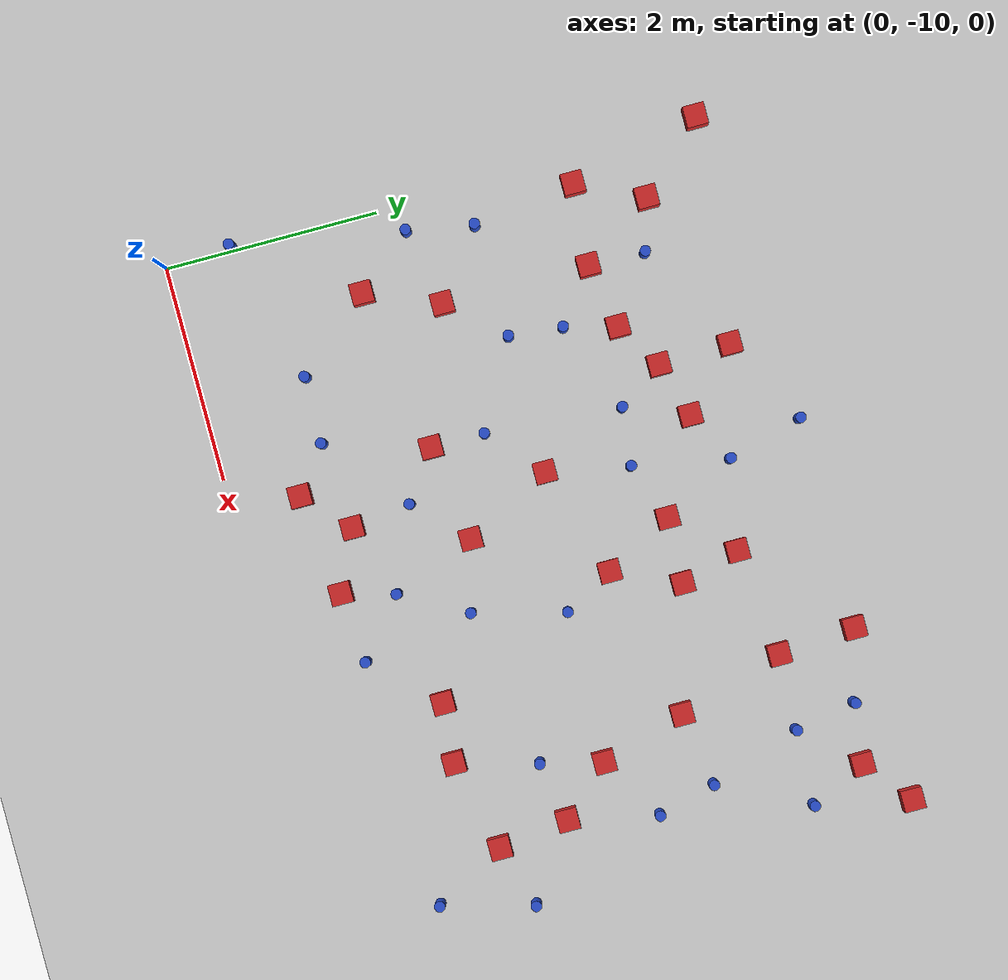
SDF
<sdf version="1.6">
 <world name="default">
  <model name="ground_plane">
   <static>1</static>
   <link name="link">
    <collision name="collision">
     <geometry><plane><normal>0 0 1</normal><size>100 100</size></plane></geometry>
     <surface><friction><ode><mu>100</mu><mu2>50</mu2></ode></friction></surface>
    </collision>
    <visual name="visual">
     <cast_shadows>0</cast_shadows>
     <geometry><plane><normal>0 0 1</normal><size>100 100</size></plane></geometry>
     <material>
      <ambient>1.0 1.0 1.0 1.0</ambient>
      <diffuse>0.8 0.8 0.8 1.0</diffuse>
      <specular>0.01 0.01 0.01 1.000000</specular>
     </material>
    </visual>
   </link>
  </model>
  <model name="pole_obstacle0">
   <static>true</static>
   <pose>6.26737419633 -9.08554294742 -3.09024884793e-07 -7.19054271912e-07 -2.1131507513e-07 -1.93935509261e-07</pose>
   <link name="link">
    <pose>0 0 0.3 0 -0 0</pose>
    <inertial>
     <mass>1</mass>
     <inertia><ixx>0.145833</ixx><ixy>0</ixy><ixz>0</ixz><iyy>0.145833</iyy><iyz>0</iyz><izz>0.125</izz></inertia>
    </inertial>
    <collision name="collision">
     <geometry><cylinder><radius>0.05</radius><length>.6</length></cylinder></geometry>
    </collision>
    <visual name="visual">
     <geometry><cylinder><radius>0.05</radius><length>.6</length></cylinder></geometry>
     <material>
      <script><name>Gazebo/Blue</name><uri>file://media/materials/scripts/gazebo.material</uri></script>
     </material>
    </visual>
   </link>
  </model>
  <model name="square_post_obstacle1">
   <static>true</static>
   <pose>0.52450580127 -5.58498487305 -4.36207812815e-07 3.75137919937e-06 9.77721102514e-07 2.47381364184e-05</pose>
   <link name="link">
    <pose>0 0 0.25 0 -0 0</pose>
    <inertial>
     <mass>100</mass>
     <inertia>
      <ixx>0.166667</ixx>
      <ixy>0</ixy>
      <ixz>0</ixz>
      <iyy>0.166667</iyy>
      <iyz>0</iyz>
      <izz>0.166667</izz>
     </inertia>
    </inertial>
    <collision name="collision"><geometry><box><size>.2 .2 .5</size></box></geometry></collision>
    <visual name="visual">
     <geometry><box><size>.2 .2 .5</size></box></geometry>
     <material>
      <script><name>Gazebo/Red</name><uri>file://media/materials/scripts/gazebo.material</uri></script>
     </material>
    </visual>
   </link>
  </model>
  <model name="square_post_obstacle4">
   <static>true</static>
   <pose>2.7346866321 -8.96292127128 -4.36207812815e-07 3.75137919937e-06 9.77721102514e-07 2.47381364184e-05</pose>
   <link name="link">
    <pose>0 0 0.25 0 -0 0</pose>
    <inertial>
     <mass>100</mass>
     <inertia>
      <ixx>0.166667</ixx>
      <ixy>0</ixy>
      <ixz>0</ixz>
      <iyy>0.166667</iyy>
      <iyz>0</iyz>
      <izz>0.166667</izz>
     </inertia>
    </inertial>
    <collision name="collision"><geometry><box><size>.2 .2 .5</size></box></geometry></collision>
    <visual name="visual">
     <geometry><box><size>.2 .2 .5</size></box></geometry>
     <material>
      <script><name>Gazebo/Red</name><uri>file://media/materials/scripts/gazebo.material</uri></script>
     </material>
    </visual>
   </link>
  </model>
  <model name="pole_obstacle8">
   <static>true</static>
   <pose>2.31660148392 -6.29924024177 -3.09024884793e-07 -7.19054271912e-07 -2.11315075134e-07 -1.93935509266e-07</pose>
   <link name="link">
    <pose>0 0 0.3 0 -0 0</pose>
    <inertial>
     <mass>1</mass>
     <inertia><ixx>0.145833</ixx><ixy>0</ixy><ixz>0</ixz><iyy>0.145833</iyy><iyz>0</iyz><izz>0.125</izz></inertia>
    </inertial>
    <collision name="collision">
     <geometry><cylinder><radius>0.05</radius><length>.6</length></cylinder></geometry>
    </collision>
    <visual name="visual">
     <geometry><cylinder><radius>0.05</radius><length>.6</length></cylinder></geometry>
     <material>
      <script><name>Gazebo/Blue</name><uri>file://media/materials/scripts/gazebo.material</uri></script>
     </material>
    </visual>
   </link>
  </model>
  <model name="pole_obstacle14">
   <static>true</static>
   <pose>5.25515491636 -7.87081092041 -3.09024884793e-07 -7.19054271911e-07 -2.1131507516e-07 -1.93935509277e-07</pose>
   <link name="link">
    <pose>0 0 0.3 0 -0 0</pose>
    <inertial>
     <mass>1</mass>
     <inertia><ixx>0.145833</ixx><ixy>0</ixy><ixz>0</ixz><iyy>0.145833</iyy><iyz>0</iyz><izz>0.125</izz></inertia>
    </inertial>
    <collision name="collision">
     <geometry><cylinder><radius>0.05</radius><length>.6</length></cylinder></geometry>
    </collision>
    <visual name="visual">
     <geometry><cylinder><radius>0.05</radius><length>.6</length></cylinder></geometry>
     <material>
      <script><name>Gazebo/Blue</name><uri>file://media/materials/scripts/gazebo.material</uri></script>
     </material>
    </visual>
   </link>
  </model>
  <model name="square_post_obstacle12">
   <static>true</static>
   <pose>5.81750560455 -7.76058420391 -4.36207812815e-07 3.75137919937e-06 9.77721102514e-07 2.47381364184e-05</pose>
   <link name="link">
    <pose>0 0 0.25 0 -0 0</pose>
    <inertial>
     <mass>100</mass>
     <inertia>
      <ixx>0.166667</ixx>
      <ixy>0</ixy>
      <ixz>0</ixz>
      <iyy>0.166667</iyy>
      <iyz>0</iyz>
      <izz>0.166667</izz>
     </inertia>
    </inertial>
    <collision name="collision"><geometry><box><size>.2 .2 .5</size></box></geometry></collision>
    <visual name="visual">
     <geometry><box><size>.2 .2 .5</size></box></geometry>
     <material>
      <script><name>Gazebo/Red</name><uri>file://media/materials/scripts/gazebo.material</uri></script>
     </material>
    </visual>
   </link>
  </model>
  <model name="pole_obstacle17">
   <static>true</static>
   <pose>1.41958316251 -7.1327692969 -3.09024884793e-07 -7.19054271912e-07 -2.11315075134e-07 -1.93935509265e-07</pose>
   <link name="link">
    <pose>0 0 0.3 0 -0 0</pose>
    <inertial>
     <mass>1</mass>
     <inertia><ixx>0.145833</ixx><ixy>0</ixy><ixz>0</ixz><iyy>0.145833</iyy><iyz>0</iyz><izz>0.125</izz></inertia>
    </inertial>
    <collision name="collision">
     <geometry><cylinder><radius>0.05</radius><length>.6</length></cylinder></geometry>
    </collision>
    <visual name="visual">
     <geometry><cylinder><radius>0.05</radius><length>.6</length></cylinder></geometry>
     <material>
      <script><name>Gazebo/Blue</name><uri>file://media/materials/scripts/gazebo.material</uri></script>
     </material>
    </visual>
   </link>
  </model>
  <model name="pole_obstacle22">
   <static>true</static>
   <pose>5.99709759781 -6.93497436783 -3.09024884793e-07 -7.19054271911e-07 -2.1131507516e-07 -1.93935509277e-07</pose>
   <link name="link">
    <pose>0 0 0.3 0 -0 0</pose>
    <inertial>
     <mass>1</mass>
     <inertia><ixx>0.145833</ixx><ixy>0</ixy><ixz>0</ixz><iyy>0.145833</iyy><iyz>0</iyz><izz>0.125</izz></inertia>
    </inertial>
    <collision name="collision">
     <geometry><cylinder><radius>0.05</radius><length>.6</length></cylinder></geometry>
    </collision>
    <visual name="visual">
     <geometry><cylinder><radius>0.05</radius><length>.6</length></cylinder></geometry>
     <material>
      <script><name>Gazebo/Blue</name><uri>file://media/materials/scripts/gazebo.material</uri></script>
     </material>
    </visual>
   </link>
  </model>
  <model name="square_post_obstacle21">
   <static>true</static>
   <pose>3.11512089551 -7.94519400333 -4.36207812815e-07 3.75137919937e-06 9.77721102514e-07 2.47381364184e-05</pose>
   <link name="link">
    <pose>0 0 0.25 0 -0 0</pose>
    <inertial>
     <mass>100</mass>
     <inertia>
      <ixx>0.166667</ixx>
      <ixy>0</ixy>
      <ixz>0</ixz>
      <iyy>0.166667</iyy>
      <iyz>0</iyz>
      <izz>0.166667</izz>
     </inertia>
    </inertial>
    <collision name="collision"><geometry><box><size>.2 .2 .5</size></box></geometry></collision>
    <visual name="visual">
     <geometry><box><size>.2 .2 .5</size></box></geometry>
     <material>
      <script><name>Gazebo/Red</name><uri>file://media/materials/scripts/gazebo.material</uri></script>
     </material>
    </visual>
   </link>
  </model>
  <model name="square_post_obstacle26">
   <static>true</static>
   <pose>0.228843179192 -6.20012209745 -4.36207812815e-07 3.75137919937e-06 9.77721102514e-07 2.47381364184e-05</pose>
   <link name="link">
    <pose>0 0 0.25 0 -0 0</pose>
    <inertial>
     <mass>100</mass>
     <inertia>
      <ixx>0.166667</ixx>
      <ixy>0</ixy>
      <ixz>0</ixz>
      <iyy>0.166667</iyy>
      <iyz>0</iyz>
      <izz>0.166667</izz>
     </inertia>
    </inertial>
    <collision name="collision"><geometry><box><size>.2 .2 .5</size></box></geometry></collision>
    <visual name="visual">
     <geometry><box><size>.2 .2 .5</size></box></geometry>
     <material>
      <script><name>Gazebo/Red</name><uri>file://media/materials/scripts/gazebo.material</uri></script>
     </material>
    </visual>
   </link>
  </model>
  <model name="pole_obstacle33">
   <static>true</static>
   <pose>5.46988691667 -4.95631190031 -3.09024884793e-07 -7.19054271911e-07 -2.1131507516e-07 -1.93935509277e-07</pose>
   <link name="link">
    <pose>0 0 0.3 0 -0 0</pose>
    <inertial>
     <mass>1</mass>
     <inertia><ixx>0.145833</ixx><ixy>0</ixy><ixz>0</ixz><iyy>0.145833</iyy><iyz>0</iyz><izz>0.125</izz></inertia>
    </inertial>
    <collision name="collision">
     <geometry><cylinder><radius>0.05</radius><length>.6</length></cylinder></geometry>
    </collision>
    <visual name="visual">
     <geometry><cylinder><radius>0.05</radius><length>.6</length></cylinder></geometry>
     <material>
      <script><name>Gazebo/Blue</name><uri>file://media/materials/scripts/gazebo.material</uri></script>
     </material>
    </visual>
   </link>
  </model>
  <model name="pole_obstacle38">
   <static>true</static>
   <pose>2.8336300995 -4.75992123661 -3.09024884793e-07 -7.19054271912e-07 -2.11315075134e-07 -1.93935509266e-07</pose>
   <link name="link">
    <pose>0 0 0.3 0 -0 0</pose>
    <inertial>
     <mass>1</mass>
     <inertia><ixx>0.145833</ixx><ixy>0</ixy><ixz>0</ixz><iyy>0.145833</iyy><iyz>0</iyz><izz>0.125</izz></inertia>
    </inertial>
    <collision name="collision">
     <geometry><cylinder><radius>0.05</radius><length>.6</length></cylinder></geometry>
    </collision>
    <visual name="visual">
     <geometry><cylinder><radius>0.05</radius><length>.6</length></cylinder></geometry>
     <material>
      <script><name>Gazebo/Blue</name><uri>file://media/materials/scripts/gazebo.material</uri></script>
     </material>
    </visual>
   </link>
  </model>
  <model name="pole_obstacle41">
   <static>true</static>
   <pose>3.42475999031 -8.72795376619 -3.09024884848e-07 -7.19054271902e-07 -2.11315075199e-07 -1.93935509286e-07</pose>
   <link name="link">
    <pose>0 0 0.3 0 -0 0</pose>
    <inertial>
     <mass>1</mass>
     <inertia><ixx>0.145833</ixx><ixy>0</ixy><ixz>0</ixz><iyy>0.145833</iyy><iyz>0</iyz><izz>0.125</izz></inertia>
    </inertial>
    <collision name="collision">
     <geometry><cylinder><radius>0.05</radius><length>.6</length></cylinder></geometry>
    </collision>
    <visual name="visual">
     <geometry><cylinder><radius>0.05</radius><length>.6</length></cylinder></geometry>
     <material>
      <script><name>Gazebo/Blue</name><uri>file://media/materials/scripts/gazebo.material</uri></script>
     </material>
    </visual>
   </link>
  </model>
  <model name="pole_obstacle51">
   <static>true</static>
   <pose>3.9506112311 -9.16215911548 -3.09024884848e-07 -7.19054271902e-07 -2.11315075199e-07 -1.93935509286e-07</pose>
   <link name="link">
    <pose>0 0 0.3 0 -0 0</pose>
    <inertial>
     <mass>1</mass>
     <inertia><ixx>0.145833</ixx><ixy>0</ixy><ixz>0</ixz><iyy>0.145833</iyy><iyz>0</iyz><izz>0.125</izz></inertia>
    </inertial>
    <collision name="collision">
     <geometry><cylinder><radius>0.05</radius><length>.6</length></cylinder></geometry>
    </collision>
    <visual name="visual">
     <geometry><cylinder><radius>0.05</radius><length>.6</length></cylinder></geometry>
     <material>
      <script><name>Gazebo/Blue</name><uri>file://media/materials/scripts/gazebo.material</uri></script>
     </material>
    </visual>
   </link>
  </model>
  <model name="pole_obstacle52">
   <static>true</static>
   <pose>2.8545146541 -6.36024013476 -3.09024884793e-07 -7.19054271912e-07 -2.11315075134e-07 -1.93935509266e-07</pose>
   <link name="link">
    <pose>0 0 0.3 0 -0 0</pose>
    <inertial>
     <mass>1</mass>
     <inertia><ixx>0.145833</ixx><ixy>0</ixy><ixz>0</ixz><iyy>0.145833</iyy><iyz>0</iyz><izz>0.125</izz></inertia>
    </inertial>
    <collision name="collision">
     <geometry><cylinder><radius>0.05</radius><length>.6</length></cylinder></geometry>
    </collision>
    <visual name="visual">
     <geometry><cylinder><radius>0.05</radius><length>.6</length></cylinder></geometry>
     <material>
      <script><name>Gazebo/Blue</name><uri>file://media/materials/scripts/gazebo.material</uri></script>
     </material>
    </visual>
   </link>
  </model>
  <model name="square_post_obstacle56">
   <static>true</static>
   <pose>5.15959012248 -6.50011600207 -4.36207812815e-07 3.75137919937e-06 9.77721102514e-07 2.47381364184e-05</pose>
   <link name="link">
    <pose>0 0 0.25 0 -0 0</pose>
    <inertial>
     <mass>100</mass>
     <inertia>
      <ixx>0.166667</ixx>
      <ixy>0</ixy>
      <ixz>0</ixz>
      <iyy>0.166667</iyy>
      <iyz>0</iyz>
      <izz>0.166667</izz>
     </inertia>
    </inertial>
    <collision name="collision"><geometry><box><size>.2 .2 .5</size></box></geometry></collision>
    <visual name="visual">
     <geometry><box><size>.2 .2 .5</size></box></geometry>
     <material>
      <script><name>Gazebo/Red</name><uri>file://media/materials/scripts/gazebo.material</uri></script>
     </material>
    </visual>
   </link>
  </model>
  <model name="square_post_obstacle59">
   <static>true</static>
   <pose>2.01064074963 -5.19921940768 -4.36207812815e-07 3.75137919937e-06 9.77721102514e-07 2.47381364184e-05</pose>
   <link name="link">
    <pose>0 0 0.25 0 -0 0</pose>
    <inertial>
     <mass>100</mass>
     <inertia>
      <ixx>0.166667</ixx>
      <ixy>0</ixy>
      <ixz>0</ixz>
      <iyy>0.166667</iyy>
      <iyz>0</iyz>
      <izz>0.166667</izz>
     </inertia>
    </inertial>
    <collision name="collision"><geometry><box><size>.2 .2 .5</size></box></geometry></collision>
    <visual name="visual">
     <geometry><box><size>.2 .2 .5</size></box></geometry>
     <material>
      <script><name>Gazebo/Red</name><uri>file://media/materials/scripts/gazebo.material</uri></script>
     </material>
    </visual>
   </link>
  </model>
  <model name="square_post_obstacle61">
   <static>true</static>
   <pose>0.693375816904 -8.3198788 -4.36207812815e-07 3.75137919937e-06 9.77721102514e-07 2.47381364184e-05</pose>
   <link name="link">
    <pose>0 0 0.25 0 -0 0</pose>
    <inertial>
     <mass>100</mass>
     <inertia>
      <ixx>0.166667</ixx>
      <ixy>0</ixy>
      <ixz>0</ixz>
      <iyy>0.166667</iyy>
      <iyz>0</iyz>
      <izz>0.166667</izz>
     </inertia>
    </inertial>
    <collision name="collision"><geometry><box><size>.2 .2 .5</size></box></geometry></collision>
    <visual name="visual">
     <geometry><box><size>.2 .2 .5</size></box></geometry>
     <material>
      <script><name>Gazebo/Red</name><uri>file://media/materials/scripts/gazebo.material</uri></script>
     </material>
    </visual>
   </link>
  </model>
  <model name="square_post_obstacle65">
   <static>true</static>
   <pose>4.8090287527 -4.78140709939 -4.36207812815e-07 3.75137919937e-06 9.77721102514e-07 2.47381364184e-05</pose>
   <link name="link">
    <pose>0 0 0.25 0 -0 0</pose>
    <inertial>
     <mass>100</mass>
     <inertia>
      <ixx>0.166667</ixx>
      <ixy>0</ixy>
      <ixz>0</ixz>
      <iyy>0.166667</iyy>
      <iyz>0</iyz>
      <izz>0.166667</izz>
     </inertia>
    </inertial>
    <collision name="collision"><geometry><box><size>.2 .2 .5</size></box></geometry></collision>
    <visual name="visual">
     <geometry><box><size>.2 .2 .5</size></box></geometry>
     <material>
      <script><name>Gazebo/Red</name><uri>file://media/materials/scripts/gazebo.material</uri></script>
     </material>
    </visual>
   </link>
  </model>
  <model name="square_post_obstacle68">
   <static>true</static>
   <pose>3.28819545472 -9.21876920866 -4.36207812815e-07 3.75137919937e-06 9.77721102514e-07 2.47381364184e-05</pose>
   <link name="link">
    <pose>0 0 0.25 0 -0 0</pose>
    <inertial>
     <mass>100</mass>
     <inertia>
      <ixx>0.166667</ixx>
      <ixy>0</ixy>
      <ixz>0</ixz>
      <iyy>0.166667</iyy>
      <iyz>0</iyz>
      <izz>0.166667</izz>
     </inertia>
    </inertial>
    <collision name="collision"><geometry><box><size>.2 .2 .5</size></box></geometry></collision>
    <visual name="visual">
     <geometry><box><size>.2 .2 .5</size></box></geometry>
     <material>
      <script><name>Gazebo/Red</name><uri>file://media/materials/scripts/gazebo.material</uri></script>
     </material>
    </visual>
   </link>
  </model>
  <model name="pole_obstacle81">
   <static>true</static>
   <pose>6.2756373101 -5.55572660978 -3.09024884793e-07 -7.19054271911e-07 -2.1131507516e-07 -1.93935509277e-07</pose>
   <link name="link">
    <pose>0 0 0.3 0 -0 0</pose>
    <inertial>
     <mass>1</mass>
     <inertia><ixx>0.145833</ixx><ixy>0</ixy><ixz>0</ixz><iyy>0.145833</iyy><iyz>0</iyz><izz>0.125</izz></inertia>
    </inertial>
    <collision name="collision">
     <geometry><cylinder><radius>0.05</radius><length>.6</length></cylinder></geometry>
    </collision>
    <visual name="visual">
     <geometry><cylinder><radius>0.05</radius><length>.6</length></cylinder></geometry>
     <material>
      <script><name>Gazebo/Blue</name><uri>file://media/materials/scripts/gazebo.material</uri></script>
     </material>
    </visual>
   </link>
  </model>
  <model name="square_post_obstacle91">
   <static>true</static>
   <pose>3.73154665182 -6.79937831815 -4.36207812815e-07 3.75137919937e-06 9.77721102514e-07 2.47381364184e-05</pose>
   <link name="link">
    <pose>0 0 0.25 0 -0 0</pose>
    <inertial>
     <mass>100</mass>
     <inertia>
      <ixx>0.166667</ixx>
      <ixy>0</ixy>
      <ixz>0</ixz>
      <iyy>0.166667</iyy>
      <iyz>0</iyz>
      <izz>0.166667</izz>
     </inertia>
    </inertial>
    <collision name="collision"><geometry><box><size>.2 .2 .5</size></box></geometry></collision>
    <visual name="visual">
     <geometry><box><size>.2 .2 .5</size></box></geometry>
     <material>
      <script><name>Gazebo/Red</name><uri>file://media/materials/scripts/gazebo.material</uri></script>
     </material>
    </visual>
   </link>
  </model>
  <model name="square_post_obstacle93">
   <static>true</static>
   <pose>4.86273339052 -5.50436371916 -4.36207812815e-07 3.75137919937e-06 9.77721102514e-07 2.47381364184e-05</pose>
   <link name="link">
    <pose>0 0 0.25 0 -0 0</pose>
    <inertial>
     <mass>100</mass>
     <inertia>
      <ixx>0.166667</ixx>
      <ixy>0</ixy>
      <ixz>0</ixz>
      <iyy>0.166667</iyy>
      <iyz>0</iyz>
      <izz>0.166667</izz>
     </inertia>
    </inertial>
    <collision name="collision"><geometry><box><size>.2 .2 .5</size></box></geometry></collision>
    <visual name="visual">
     <geometry><box><size>.2 .2 .5</size></box></geometry>
     <material>
      <script><name>Gazebo/Red</name><uri>file://media/materials/scripts/gazebo.material</uri></script>
     </material>
    </visual>
   </link>
  </model>
  <model name="pole_obstacle103">
   <static>true</static>
   <pose>5.85486615833 -6.38888425052 -3.09024884793e-07 -7.19054271911e-07 -2.1131507516e-07 -1.93935509277e-07</pose>
   <link name="link">
    <pose>0 0 0.3 0 -0 0</pose>
    <inertial>
     <mass>1</mass>
     <inertia><ixx>0.145833</ixx><ixy>0</ixy><ixz>0</ixz><iyy>0.145833</iyy><iyz>0</iyz><izz>0.125</izz></inertia>
    </inertial>
    <collision name="collision">
     <geometry><cylinder><radius>0.05</radius><length>.6</length></cylinder></geometry>
    </collision>
    <visual name="visual">
     <geometry><cylinder><radius>0.05</radius><length>.6</length></cylinder></geometry>
     <material>
      <script><name>Gazebo/Blue</name><uri>file://media/materials/scripts/gazebo.material</uri></script>
     </material>
    </visual>
   </link>
  </model>
  <model name="pole_obstacle107">
   <static>true</static>
   <pose>0.35894095309 -7.16506160182 -3.09024884793e-07 -7.19054271912e-07 -2.1131507513e-07 -1.93935509262e-07</pose>
   <link name="link">
    <pose>0 0 0.3 0 -0 0</pose>
    <inertial>
     <mass>1</mass>
     <inertia><ixx>0.145833</ixx><ixy>0</ixy><ixz>0</ixz><iyy>0.145833</iyy><iyz>0</iyz><izz>0.125</izz></inertia>
    </inertial>
    <collision name="collision">
     <geometry><cylinder><radius>0.05</radius><length>.6</length></cylinder></geometry>
    </collision>
    <visual name="visual">
     <geometry><cylinder><radius>0.05</radius><length>.6</length></cylinder></geometry>
     <material>
      <script><name>Gazebo/Blue</name><uri>file://media/materials/scripts/gazebo.material</uri></script>
     </material>
    </visual>
   </link>
  </model>
  <model name="pole_obstacle109">
   <static>true</static>
   <pose>-0.0438173945171 -9.36927156148 -3.09024884793e-07 -7.19054271911e-07 -2.11315075161e-07 -1.93935509279e-07</pose>
   <link name="link">
    <pose>0 0 0.3 0 -0 0</pose>
    <inertial>
     <mass>1</mass>
     <inertia><ixx>0.145833</ixx><ixy>0</ixy><ixz>0</ixz><iyy>0.145833</iyy><iyz>0</iyz><izz>0.125</izz></inertia>
    </inertial>
    <collision name="collision">
     <geometry><cylinder><radius>0.05</radius><length>.6</length></cylinder></geometry>
    </collision>
    <visual name="visual">
     <geometry><cylinder><radius>0.05</radius><length>.6</length></cylinder></geometry>
     <material>
      <script><name>Gazebo/Blue</name><uri>file://media/materials/scripts/gazebo.material</uri></script>
     </material>
    </visual>
   </link>
  </model>
  <model name="square_post_obstacle103">
   <static>true</static>
   <pose>4.4940246131 -8.57953055254 -4.36207812815e-07 3.75137919937e-06 9.77721102514e-07 2.47381364184e-05</pose>
   <link name="link">
    <pose>0 0 0.25 0 -0 0</pose>
    <inertial>
     <mass>100</mass>
     <inertia>
      <ixx>0.166667</ixx>
      <ixy>0</ixy>
      <ixz>0</ixz>
      <iyy>0.166667</iyy>
      <iyz>0</iyz>
      <izz>0.166667</izz>
     </inertia>
    </inertial>
    <collision name="collision"><geometry><box><size>.2 .2 .5</size></box></geometry></collision>
    <visual name="visual">
     <geometry><box><size>.2 .2 .5</size></box></geometry>
     <material>
      <script><name>Gazebo/Red</name><uri>file://media/materials/scripts/gazebo.material</uri></script>
     </material>
    </visual>
   </link>
  </model>
  <model name="pole_obstacle112">
   <static>true</static>
   <pose>3.7681788813 -8.11960715061 -3.09024884848e-07 -7.19054271902e-07 -2.11315075199e-07 -1.93935509286e-07</pose>
   <link name="link">
    <pose>0 0 0.3 0 -0 0</pose>
    <inertial>
     <mass>1</mass>
     <inertia><ixx>0.145833</ixx><ixy>0</ixy><ixz>0</ixz><iyy>0.145833</iyy><iyz>0</iyz><izz>0.125</izz></inertia>
    </inertial>
    <collision name="collision">
     <geometry><cylinder><radius>0.05</radius><length>.6</length></cylinder></geometry>
    </collision>
    <visual name="visual">
     <geometry><cylinder><radius>0.05</radius><length>.6</length></cylinder></geometry>
     <material>
      <script><name>Gazebo/Blue</name><uri>file://media/materials/scripts/gazebo.material</uri></script>
     </material>
    </visual>
   </link>
  </model>
  <model name="square_post_obstacle110">
   <static>true</static>
   <pose>-0.0745025499852 -4.96385545682 -4.36207812815e-07 3.75137919937e-06 9.77721102514e-07 2.47381364184e-05</pose>
   <link name="link">
    <pose>0 0 0.25 0 -0 0</pose>
    <inertial>
     <mass>100</mass>
     <inertia>
      <ixx>0.166667</ixx>
      <ixy>0</ixy>
      <ixz>0</ixz>
      <iyy>0.166667</iyy>
      <iyz>0</iyz>
      <izz>0.166667</izz>
     </inertia>
    </inertial>
    <collision name="collision"><geometry><box><size>.2 .2 .5</size></box></geometry></collision>
    <visual name="visual">
     <geometry><box><size>.2 .2 .5</size></box></geometry>
     <material>
      <script><name>Gazebo/Red</name><uri>file://media/materials/scripts/gazebo.material</uri></script>
     </material>
    </visual>
   </link>
  </model>
  <model name="square_post_obstacle112">
   <static>true</static>
   <pose>4.00732856403 -6.18316936081 -4.36207812815e-07 3.75137919937e-06 9.77721102514e-07 2.47381364184e-05</pose>
   <link name="link">
    <pose>0 0 0.25 0 -0 0</pose>
    <inertial>
     <mass>100</mass>
     <inertia>
      <ixx>0.166667</ixx>
      <ixy>0</ixy>
      <ixz>0</ixz>
      <iyy>0.166667</iyy>
      <iyz>0</iyz>
      <izz>0.166667</izz>
     </inertia>
    </inertial>
    <collision name="collision"><geometry><box><size>.2 .2 .5</size></box></geometry></collision>
    <visual name="visual">
     <geometry><box><size>.2 .2 .5</size></box></geometry>
     <material>
      <script><name>Gazebo/Red</name><uri>file://media/materials/scripts/gazebo.material</uri></script>
     </material>
    </visual>
   </link>
  </model>
  <model name="pole_obstacle119">
   <static>true</static>
   <pose>1.92117141656 -9.03212368814 -3.09024884793e-07 -7.19054271912e-07 -2.1131507515e-07 -1.93935509273e-07</pose>
   <link name="link">
    <pose>0 0 0.3 0 -0 0</pose>
    <inertial>
     <mass>1</mass>
     <inertia><ixx>0.145833</ixx><ixy>0</ixy><ixz>0</ixz><iyy>0.145833</iyy><iyz>0</iyz><izz>0.125</izz></inertia>
    </inertial>
    <collision name="collision">
     <geometry><cylinder><radius>0.05</radius><length>.6</length></cylinder></geometry>
    </collision>
    <visual name="visual">
     <geometry><cylinder><radius>0.05</radius><length>.6</length></cylinder></geometry>
     <material>
      <script><name>Gazebo/Blue</name><uri>file://media/materials/scripts/gazebo.material</uri></script>
     </material>
    </visual>
   </link>
  </model>
  <model name="pole_obstacle134">
   <static>true</static>
   <pose>3.9899939956 -7.26480846765 -3.09024884793e-07 -7.19054271912e-07 -2.11315075147e-07 -1.93935509272e-07</pose>
   <link name="link">
    <pose>0 0 0.3 0 -0 0</pose>
    <inertial>
     <mass>1</mass>
     <inertia><ixx>0.145833</ixx><ixy>0</ixy><ixz>0</ixz><iyy>0.145833</iyy><iyz>0</iyz><izz>0.125</izz></inertia>
    </inertial>
    <collision name="collision">
     <geometry><cylinder><radius>0.05</radius><length>.6</length></cylinder></geometry>
    </collision>
    <visual name="visual">
     <geometry><cylinder><radius>0.05</radius><length>.6</length></cylinder></geometry>
     <material>
      <script><name>Gazebo/Blue</name><uri>file://media/materials/scripts/gazebo.material</uri></script>
     </material>
    </visual>
   </link>
  </model>
  <model name="pole_obstacle135">
   <static>true</static>
   <pose>2.21905871887 -7.57457823966 -3.09024884793e-07 -7.19054271912e-07 -2.11315075134e-07 -1.93935509266e-07</pose>
   <link name="link">
    <pose>0 0 0.3 0 -0 0</pose>
    <inertial>
     <mass>1</mass>
     <inertia><ixx>0.145833</ixx><ixy>0</ixy><ixz>0</ixz><iyy>0.145833</iyy><iyz>0</iyz><izz>0.125</izz></inertia>
    </inertial>
    <collision name="collision">
     <geometry><cylinder><radius>0.05</radius><length>.6</length></cylinder></geometry>
    </collision>
    <visual name="visual">
     <geometry><cylinder><radius>0.05</radius><length>.6</length></cylinder></geometry>
     <material>
      <script><name>Gazebo/Blue</name><uri>file://media/materials/scripts/gazebo.material</uri></script>
     </material>
    </visual>
   </link>
  </model>
  <model name="square_post_obstacle133">
   <static>true</static>
   <pose>5.39612759995 -7.29958940041 -4.36207812815e-07 3.75137919937e-06 9.77721102514e-07 2.47381364184e-05</pose>
   <link name="link">
    <pose>0 0 0.25 0 -0 0</pose>
    <inertial>
     <mass>100</mass>
     <inertia>
      <ixx>0.166667</ixx>
      <ixy>0</ixy>
      <ixz>0</ixz>
      <iyy>0.166667</iyy>
      <iyz>0</iyz>
      <izz>0.166667</izz>
     </inertia>
    </inertial>
    <collision name="collision"><geometry><box><size>.2 .2 .5</size></box></geometry></collision>
    <visual name="visual">
     <geometry><box><size>.2 .2 .5</size></box></geometry>
     <material>
      <script><name>Gazebo/Red</name><uri>file://media/materials/scripts/gazebo.material</uri></script>
     </material>
    </visual>
   </link>
  </model>
  <model name="pole_obstacle143">
   <static>true</static>
   <pose>3.02420245181 -5.46671086674 -3.09024884793e-07 -7.19054271912e-07 -2.11315075134e-07 -1.93935509266e-07</pose>
   <link name="link">
    <pose>0 0 0.3 0 -0 0</pose>
    <inertial>
     <mass>1</mass>
     <inertia><ixx>0.145833</ixx><ixy>0</ixy><ixz>0</ixz><iyy>0.145833</iyy><iyz>0</iyz><izz>0.125</izz></inertia>
    </inertial>
    <collision name="collision">
     <geometry><cylinder><radius>0.05</radius><length>.6</length></cylinder></geometry>
    </collision>
    <visual name="visual">
     <geometry><cylinder><radius>0.05</radius><length>.6</length></cylinder></geometry>
     <material>
      <script><name>Gazebo/Blue</name><uri>file://media/materials/scripts/gazebo.material</uri></script>
     </material>
    </visual>
   </link>
  </model>
  <model name="pole_obstacle148">
   <static>true</static>
   <pose>2.66415698983 -8.40104156284 -3.09024884848e-07 -7.19054271902e-07 -2.11315075199e-07 -1.93935509286e-07</pose>
   <link name="link">
    <pose>0 0 0.3 0 -0 0</pose>
    <inertial>
     <mass>1</mass>
     <inertia><ixx>0.145833</ixx><ixy>0</ixy><ixz>0</ixz><iyy>0.145833</iyy><iyz>0</iyz><izz>0.125</izz></inertia>
    </inertial>
    <collision name="collision">
     <geometry><cylinder><radius>0.05</radius><length>.6</length></cylinder></geometry>
    </collision>
    <visual name="visual">
     <geometry><cylinder><radius>0.05</radius><length>.6</length></cylinder></geometry>
     <material>
      <script><name>Gazebo/Blue</name><uri>file://media/materials/scripts/gazebo.material</uri></script>
     </material>
    </visual>
   </link>
  </model>
  <model name="square_post_obstacle145">
   <static>true</static>
   <pose>2.02689789451 -5.87305112149 -4.36207812815e-07 3.75137919937e-06 9.77721102514e-07 2.47381364184e-05</pose>
   <link name="link">
    <pose>0 0 0.25 0 -0 0</pose>
    <inertial>
     <mass>100</mass>
     <inertia>
      <ixx>0.166667</ixx>
      <ixy>0</ixy>
      <ixz>0</ixz>
      <iyy>0.166667</iyy>
      <iyz>0</iyz>
      <izz>0.166667</izz>
     </inertia>
    </inertial>
    <collision name="collision"><geometry><box><size>.2 .2 .5</size></box></geometry></collision>
    <visual name="visual">
     <geometry><box><size>.2 .2 .5</size></box></geometry>
     <material>
      <script><name>Gazebo/Red</name><uri>file://media/materials/scripts/gazebo.material</uri></script>
     </material>
    </visual>
   </link>
  </model>
  <model name="pole_obstacle160">
   <static>true</static>
   <pose>1.47059288118 -6.62940126464 -3.09024884793e-07 -7.19054271912e-07 -2.11315075134e-07 -1.93935509265e-07</pose>
   <link name="link">
    <pose>0 0 0.3 0 -0 0</pose>
    <inertial>
     <mass>1</mass>
     <inertia><ixx>0.145833</ixx><ixy>0</ixy><ixz>0</ixz><iyy>0.145833</iyy><iyz>0</iyz><izz>0.125</izz></inertia>
    </inertial>
    <collision name="collision">
     <geometry><cylinder><radius>0.05</radius><length>.6</length></cylinder></geometry>
    </collision>
    <visual name="visual">
     <geometry><cylinder><radius>0.05</radius><length>.6</length></cylinder></geometry>
     <material>
      <script><name>Gazebo/Blue</name><uri>file://media/materials/scripts/gazebo.material</uri></script>
     </material>
    </visual>
   </link>
  </model>
  <model name="pole_obstacle163">
   <static>true</static>
   <pose>6.4933623605 -8.23709528568 -3.09024884793e-07 -7.19054271912e-07 -2.1131507513e-07 -1.93935509261e-07</pose>
   <link name="link">
    <pose>0 0 0.3 0 -0 0</pose>
    <inertial>
     <mass>1</mass>
     <inertia><ixx>0.145833</ixx><ixy>0</ixy><ixz>0</ixz><iyy>0.145833</iyy><iyz>0</iyz><izz>0.125</izz></inertia>
    </inertial>
    <collision name="collision">
     <geometry><cylinder><radius>0.05</radius><length>.6</length></cylinder></geometry>
    </collision>
    <visual name="visual">
     <geometry><cylinder><radius>0.05</radius><length>.6</length></cylinder></geometry>
     <material>
      <script><name>Gazebo/Blue</name><uri>file://media/materials/scripts/gazebo.material</uri></script>
     </material>
    </visual>
   </link>
  </model>
  <model name="square_post_obstacle172">
   <static>true</static>
   <pose>6.45626182357 -4.67738509098 -4.36207812815e-07 3.75137919937e-06 9.77721102514e-07 2.47381364184e-05</pose>
   <link name="link">
    <pose>0 0 0.25 0 -0 0</pose>
    <inertial>
     <mass>100</mass>
     <inertia>
      <ixx>0.166667</ixx>
      <ixy>0</ixy>
      <ixz>0</ixz>
      <iyy>0.166667</iyy>
      <iyz>0</iyz>
      <izz>0.166667</izz>
     </inertia>
    </inertial>
    <collision name="collision"><geometry><box><size>.2 .2 .5</size></box></geometry></collision>
    <visual name="visual">
     <geometry><box><size>.2 .2 .5</size></box></geometry>
     <material>
      <script><name>Gazebo/Red</name><uri>file://media/materials/scripts/gazebo.material</uri></script>
     </material>
    </visual>
   </link>
  </model>
  <model name="pole_obstacle177">
   <static>true</static>
   <pose>1.29664722261 -9.01976090382 -3.09024884793e-07 -7.19054271912e-07 -2.1131507515e-07 -1.93935509273e-07</pose>
   <link name="link">
    <pose>0 0 0.3 0 -0 0</pose>
    <inertial>
     <mass>1</mass>
     <inertia><ixx>0.145833</ixx><ixy>0</ixy><ixz>0</ixz><iyy>0.145833</iyy><iyz>0</iyz><izz>0.125</izz></inertia>
    </inertial>
    <collision name="collision">
     <geometry><cylinder><radius>0.05</radius><length>.6</length></cylinder></geometry>
    </collision>
    <visual name="visual">
     <geometry><cylinder><radius>0.05</radius><length>.6</length></cylinder></geometry>
     <material>
      <script><name>Gazebo/Blue</name><uri>file://media/materials/scripts/gazebo.material</uri></script>
     </material>
    </visual>
   </link>
  </model>
  <model name="square_post_obstacle177">
   <static>true</static>
   <pose>2.70295506855 -7.13325755622 -4.36207812815e-07 3.75137919937e-06 9.77721102514e-07 2.47381364184e-05</pose>
   <link name="link">
    <pose>0 0 0.25 0 -0 0</pose>
    <inertial>
     <mass>100</mass>
     <inertia>
      <ixx>0.166667</ixx>
      <ixy>0</ixy>
      <ixz>0</ixz>
      <iyy>0.166667</iyy>
      <iyz>0</iyz>
      <izz>0.166667</izz>
     </inertia>
    </inertial>
    <collision name="collision"><geometry><box><size>.2 .2 .5</size></box></geometry></collision>
    <visual name="visual">
     <geometry><box><size>.2 .2 .5</size></box></geometry>
     <material>
      <script><name>Gazebo/Red</name><uri>file://media/materials/scripts/gazebo.material</uri></script>
     </material>
    </visual>
   </link>
  </model>
  <model name="square_post_obstacle178">
   <static>true</static>
   <pose>2.33269178255 -9.34717634118 -4.36207812815e-07 3.75137919937e-06 9.77721102514e-07 2.47381364184e-05</pose>
   <link name="link">
    <pose>0 0 0.25 0 -0 0</pose>
    <inertial>
     <mass>100</mass>
     <inertia>
      <ixx>0.166667</ixx>
      <ixy>0</ixy>
      <ixz>0</ixz>
      <iyy>0.166667</iyy>
      <iyz>0</iyz>
      <izz>0.166667</izz>
     </inertia>
    </inertial>
    <collision name="collision"><geometry><box><size>.2 .2 .5</size></box></geometry></collision>
    <visual name="visual">
     <geometry><box><size>.2 .2 .5</size></box></geometry>
     <material>
      <script><name>Gazebo/Red</name><uri>file://media/materials/scripts/gazebo.material</uri></script>
     </material>
    </visual>
   </link>
  </model>
  <model name="square_post_obstacle181">
   <static>true</static>
   <pose>3.85163922255 -5.62490436073 -4.36207812815e-07 3.75137919937e-06 9.77721102514e-07 2.47381364184e-05</pose>
   <link name="link">
    <pose>0 0 0.25 0 -0 0</pose>
    <inertial>
     <mass>100</mass>
     <inertia>
      <ixx>0.166667</ixx>
      <ixy>0</ixy>
      <ixz>0</ixz>
      <iyy>0.166667</iyy>
      <iyz>0</iyz>
      <izz>0.166667</izz>
     </inertia>
    </inertial>
    <collision name="collision"><geometry><box><size>.2 .2 .5</size></box></geometry></collision>
    <visual name="visual">
     <geometry><box><size>.2 .2 .5</size></box></geometry>
     <material>
      <script><name>Gazebo/Red</name><uri>file://media/materials/scripts/gazebo.material</uri></script>
     </material>
    </visual>
   </link>
  </model>
  <model name="pole_obstacle182">
   <static>true</static>
   <pose>1.00342072054 -5.72884431622 -3.09024884793e-07 -7.19054271912e-07 -2.11315075136e-07 -1.93935509265e-07</pose>
   <link name="link">
    <pose>0 0 0.3 0 -0 0</pose>
    <inertial>
     <mass>1</mass>
     <inertia><ixx>0.145833</ixx><ixy>0</ixy><ixz>0</ixz><iyy>0.145833</iyy><iyz>0</iyz><izz>0.125</izz></inertia>
    </inertial>
    <collision name="collision">
     <geometry><cylinder><radius>0.05</radius><length>.6</length></cylinder></geometry>
    </collision>
    <visual name="visual">
     <geometry><cylinder><radius>0.05</radius><length>.6</length></cylinder></geometry>
     <material>
      <script><name>Gazebo/Blue</name><uri>file://media/materials/scripts/gazebo.material</uri></script>
     </material>
    </visual>
   </link>
  </model>
  <model name="square_post_obstacle185">
   <static>true</static>
   <pose>2.21418602812 -8.0778740495 -4.36207812815e-07 3.75137919937e-06 9.77721102514e-07 2.47381364184e-05</pose>
   <link name="link">
    <pose>0 0 0.25 0 -0 0</pose>
    <inertial>
     <mass>100</mass>
     <inertia>
      <ixx>0.166667</ixx>
      <ixy>0</ixy>
      <ixz>0</ixz>
      <iyy>0.166667</iyy>
      <iyz>0</iyz>
      <izz>0.166667</izz>
     </inertia>
    </inertial>
    <collision name="collision"><geometry><box><size>.2 .2 .5</size></box></geometry></collision>
    <visual name="visual">
     <geometry><box><size>.2 .2 .5</size></box></geometry>
     <material>
      <script><name>Gazebo/Red</name><uri>file://media/materials/scripts/gazebo.material</uri></script>
     </material>
    </visual>
   </link>
  </model>
  <model name="square_post_obstacle192">
   <static>true</static>
   <pose>5.04797414108 -8.62526583929 -4.36207812815e-07 3.75137919937e-06 9.77721102514e-07 2.47381364184e-05</pose>
   <link name="link">
    <pose>0 0 0.25 0 -0 0</pose>
    <inertial>
     <mass>100</mass>
     <inertia>
      <ixx>0.166667</ixx>
      <ixy>0</ixy>
      <ixz>0</ixz>
      <iyy>0.166667</iyy>
      <iyz>0</iyz>
      <izz>0.166667</izz>
     </inertia>
    </inertial>
    <collision name="collision"><geometry><box><size>.2 .2 .5</size></box></geometry></collision>
    <visual name="visual">
     <geometry><box><size>.2 .2 .5</size></box></geometry>
     <material>
      <script><name>Gazebo/Red</name><uri>file://media/materials/scripts/gazebo.material</uri></script>
     </material>
    </visual>
   </link>
  </model>
  <model name="square_post_obstacle195">
   <static>true</static>
   <pose>6.02819754098 -5.03103167577 -4.36207812815e-07 3.75137919937e-06 9.77721102514e-07 2.47381364184e-05</pose>
   <link name="link">
    <pose>0 0 0.25 0 -0 0</pose>
    <inertial>
     <mass>100</mass>
     <inertia>
      <ixx>0.166667</ixx>
      <ixy>0</ixy>
      <ixz>0</ixz>
      <iyy>0.166667</iyy>
      <iyz>0</iyz>
      <izz>0.166667</izz>
     </inertia>
    </inertial>
    <collision name="collision"><geometry><box><size>.2 .2 .5</size></box></geometry></collision>
    <visual name="visual">
     <geometry><box><size>.2 .2 .5</size></box></geometry>
     <material>
      <script><name>Gazebo/Red</name><uri>file://media/materials/scripts/gazebo.material</uri></script>
     </material>
    </visual>
   </link>
  </model>
  <model name="square_post_obstacle199">
   <static>true</static>
   <pose>3.39538147502 -6.16046144269 -4.36207812815e-07 3.75137919937e-06 9.77721102514e-07 2.47381364184e-05</pose>
   <link name="link">
    <pose>0 0 0.25 0 -0 0</pose>
    <inertial>
     <mass>100</mass>
     <inertia>
      <ixx>0.166667</ixx>
      <ixy>0</ixy>
      <ixz>0</ixz>
      <iyy>0.166667</iyy>
      <iyz>0</iyz>
      <izz>0.166667</izz>
     </inertia>
    </inertial>
    <collision name="collision"><geometry><box><size>.2 .2 .5</size></box></geometry></collision>
    <visual name="visual">
     <geometry><box><size>.2 .2 .5</size></box></geometry>
     <material>
      <script><name>Gazebo/Red</name><uri>file://media/materials/scripts/gazebo.material</uri></script>
     </material>
    </visual>
   </link>
  </model>
  <model name="square_post_obstacle204">
   <static>true</static>
   <pose>0.983032119691 -6.25955146228 -4.36207812815e-07 3.75137919937e-06 9.77721102514e-07 2.47381364184e-05</pose>
   <link name="link">
    <pose>0 0 0.25 0 -0 0</pose>
    <inertial>
     <mass>100</mass>
     <inertia>
      <ixx>0.166667</ixx>
      <ixy>0</ixy>
      <ixz>0</ixz>
      <iyy>0.166667</iyy>
      <iyz>0</iyz>
      <izz>0.166667</izz>
     </inertia>
    </inertial>
    <collision name="collision"><geometry><box><size>.2 .2 .5</size></box></geometry></collision>
    <visual name="visual">
     <geometry><box><size>.2 .2 .5</size></box></geometry>
     <material>
      <script><name>Gazebo/Red</name><uri>file://media/materials/scripts/gazebo.material</uri></script>
     </material>
    </visual>
   </link>
  </model>
  <model name="pole_obstacle197">
   <static>true</static>
   <pose>5.57047336503 -5.53391352086 -3.09024884793e-07 -7.19054271911e-07 -2.1131507516e-07 -1.93935509277e-07</pose>
   <link name="link">
    <pose>0 0 0.3 0 -0 0</pose>
    <inertial>
     <mass>1</mass>
     <inertia><ixx>0.145833</ixx><ixy>0</ixy><ixz>0</ixz><iyy>0.145833</iyy><iyz>0</iyz><izz>0.125</izz></inertia>
    </inertial>
    <collision name="collision">
     <geometry><cylinder><radius>0.05</radius><length>.6</length></cylinder></geometry>
    </collision>
    <visual name="visual">
     <geometry><cylinder><radius>0.05</radius><length>.6</length></cylinder></geometry>
     <material>
      <script><name>Gazebo/Blue</name><uri>file://media/materials/scripts/gazebo.material</uri></script>
     </material>
    </visual>
   </link>
  </model>
  <model name="pole_obstacle210">
   <static>true</static>
   <pose>0.246817823616 -7.78483502235 -3.09024884793e-07 -7.19054271912e-07 -2.11315075125e-07 -1.9393550926e-07</pose>
   <link name="link">
    <pose>0 0 0.3 0 -0 0</pose>
    <inertial>
     <mass>1</mass>
     <inertia><ixx>0.145833</ixx><ixy>0</ixy><ixz>0</ixz><iyy>0.145833</iyy><iyz>0</iyz><izz>0.125</izz></inertia>
    </inertial>
    <collision name="collision">
     <geometry><cylinder><radius>0.05</radius><length>.6</length></cylinder></geometry>
    </collision>
    <visual name="visual">
     <geometry><cylinder><radius>0.05</radius><length>.6</length></cylinder></geometry>
     <material>
      <script><name>Gazebo/Blue</name><uri>file://media/materials/scripts/gazebo.material</uri></script>
     </material>
    </visual>
   </link>
  </model>
  <model name="square_post_obstacle212">
   <static>true</static>
   <pose>0.972942055196 -7.63643002533 -4.36207812815e-07 3.75137919937e-06 9.77721102514e-07 2.47381364184e-05</pose>
   <link name="link">
    <pose>0 0 0.25 0 -0 0</pose>
    <inertial>
     <mass>100</mass>
     <inertia>
      <ixx>0.166667</ixx>
      <ixy>0</ixy>
      <ixz>0</ixz>
      <iyy>0.166667</iyy>
      <iyz>0</iyz>
      <izz>0.166667</izz>
     </inertia>
    </inertial>
    <collision name="collision"><geometry><box><size>.2 .2 .5</size></box></geometry></collision>
    <visual name="visual">
     <geometry><box><size>.2 .2 .5</size></box></geometry>
     <material>
      <script><name>Gazebo/Red</name><uri>file://media/materials/scripts/gazebo.material</uri></script>
     </material>
    </visual>
   </link>
  </model>
  <model name="square_post_obstacle213">
   <static>true</static>
   <pose>1.5929100552 -6.14379002533 -4.36207812815e-07 3.75137919937e-06 9.77721102514e-07 2.47381364184e-05</pose>
   <link name="link">
    <pose>0 0 0.25 0 -0 0</pose>
    <inertial>
     <mass>100</mass>
     <inertia>
      <ixx>0.166667</ixx>
      <ixy>0</ixy>
      <ixz>0</ixz>
      <iyy>0.166667</iyy>
      <iyz>0</iyz>
      <izz>0.166667</izz>
     </inertia>
    </inertial>
    <collision name="collision"><geometry><box><size>.2 .2 .5</size></box></geometry></collision>
    <visual name="visual">
     <geometry><box><size>.2 .2 .5</size></box></geometry>
     <material>
      <script><name>Gazebo/Red</name><uri>file://media/materials/scripts/gazebo.material</uri></script>
     </material>
    </visual>
   </link>
  </model>
  <model name="square_post_obstacle216">
   <static>true</static>
   <pose>5.9038500552 -8.42191002533 -4.36207812815e-07 3.75137919937e-06 9.77721102514e-07 2.47381364184e-05</pose>
   <link name="link">
    <pose>0 0 0.25 0 -0 0</pose>
    <inertial>
     <mass>100</mass>
     <inertia>
      <ixx>0.166667</ixx>
      <ixy>0</ixy>
      <ixz>0</ixz>
      <iyy>0.166667</iyy>
      <iyz>0</iyz>
      <izz>0.166667</izz>
     </inertia>
    </inertial>
    <collision name="collision"><geometry><box><size>.2 .2 .5</size></box></geometry></collision>
    <visual name="visual">
     <geometry><box><size>.2 .2 .5</size></box></geometry>
     <material>
      <script><name>Gazebo/Red</name><uri>file://media/materials/scripts/gazebo.material</uri></script>
     </material>
    </visual>
   </link>
  </model>
  <model name="square_post_obstacle218">
   <static>true</static>
   <pose>2.5452800552 -5.71673002533 -4.36207812815e-07 3.75137919937e-06 9.77721102514e-07 2.47381364184e-05</pose>
   <link name="link">
    <pose>0 0 0.25 0 -0 0</pose>
    <inertial>
     <mass>100</mass>
     <inertia>
      <ixx>0.166667</ixx>
      <ixy>0</ixy>
      <ixz>0</ixz>
      <iyy>0.166667</iyy>
      <iyz>0</iyz>
      <izz>0.166667</izz>
     </inertia>
    </inertial>
    <collision name="collision"><geometry><box><size>.2 .2 .5</size></box></geometry></collision>
    <visual name="visual">
     <geometry><box><size>.2 .2 .5</size></box></geometry>
     <material>
      <script><name>Gazebo/Red</name><uri>file://media/materials/scripts/gazebo.material</uri></script>
     </material>
    </visual>
   </link>
  </model>
 </world>
</sdf>
